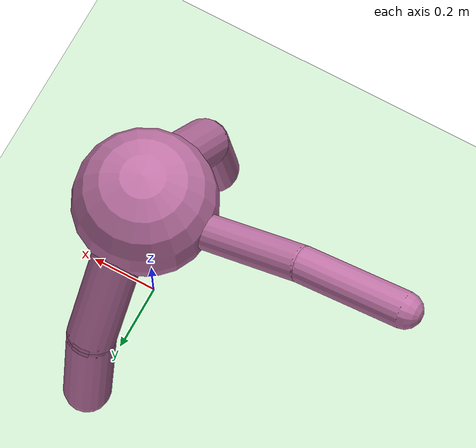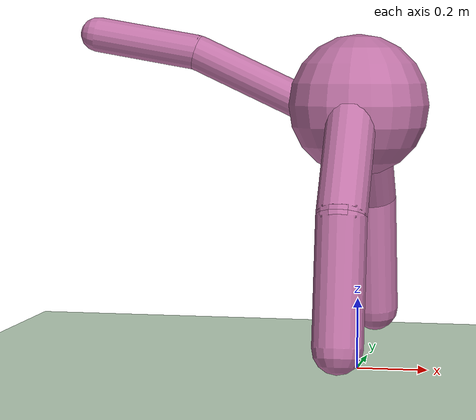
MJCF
<mujoco model="biped_tail">
  <compiler angle="radian"/>

  <option timestep="0.01" integrator="RK4"/>

  <default>
    <joint limited="true" armature="1" damping="1"/>
    <geom conaffinity="0" friction="1 0.5 0.5" margin="0.01" density="5" rgba="0.75 0.45 0.65 1"/>
  </default>

  <asset>
    <texture type="skybox" colorspace="auto" name="sky" builtin="gradient" rgb1="1 1 1" rgb2="0 0 0" width="100" height="600"/>
    <texture type="2d" colorspace="auto" name="texplane" builtin="checker" rgb1="0 0 0" rgb2="0.8 0.8 0.8" width="100" height="100"/>
    <material name="MatPlane" texture="texplane" texrepeat="60 60" specular="1" shininess="1" reflectance="0.5"/>
  </asset>

  <worldbody>
    <geom name="floor" size="40 40 40" type="plane" conaffinity="1" material="MatPlane" rgba="0.8 0.9 0.8 1"/>
    <light pos="0 0 1.3" dir="0 0 -1" type="directional" cutoff="100" diffuse="1 1 1" specular="0.1 0.1 0.1"/>
    <body name="torso" pos="0 0 0.751386">
      <joint name="root" type="free" margin="0.01" armature="0" damping="0"/>
      <geom name="torso_geom" size="0.2"/>
      <camera name="track" pos="0 -3 0.3" quat="0.707107 0.707107 0 0" mode="trackcom"/>
      <body name="leg_l">
        <geom name="leg_l_mount_geom" size="0.07 0.06" pos="0 0.06 0" quat="0.707107 0.707107 0 0" type="capsule"/>
        <body name="leg_l_seg1" pos="0 0.12 0">
          <joint name="leg_l_seg1_joint" pos="0 0 0" axis="0 0 1" range="-0.436332 0.436332"/>
          <geom name="leg_l_seg1_geom" size="0.07 0.175" pos="0 0.100376 -0.143352" quat="0.953717 0.300706 0 0" type="capsule"/>
          <body name="leg_l_seg2" pos="0 0.200752 -0.286703">
            <joint name="leg_l_seg2_joint" pos="0 0 0" axis="-1 0 0" range="-0.872665 0.872665"/>
            <geom name="leg_l_seg2_geom" size="0.07 0.175" pos="0 0.0303884 -0.172341" quat="0.996195 0.0871557 0 0" type="capsule"/>
          </body>
        </body>
      </body>
      <body name="leg_r">
        <geom name="leg_r_mount_geom" size="0.07 0.06" pos="0 -0.06 0" quat="0.707107 -0.707107 0 0" type="capsule"/>
        <body name="leg_r_seg1" pos="0 -0.12 0">
          <joint name="leg_r_seg1_joint" pos="0 0 0" axis="0 0 1" range="-0.436332 0.436332"/>
          <geom name="leg_r_seg1_geom" size="0.07 0.175" pos="0 -0.100376 -0.143352" quat="0.953717 -0.300706 0 0" type="capsule"/>
          <body name="leg_r_seg2" pos="0 -0.200752 -0.286703">
            <joint name="leg_r_seg2_joint" pos="0 0 0" axis="1 0 0" range="-0.872665 0.872665"/>
            <geom name="leg_r_seg2_geom" size="0.07 0.175" pos="0 -0.0303884 -0.172341" quat="0.996195 -0.0871557 0 0" type="capsule"/>
          </body>
        </body>
      </body>
      <body name="tail">
        <geom name="tail_mount_geom" size="0.05 0.075" pos="-0.075 0 0" quat="0.707107 0 0.707107 0" type="capsule"/>
        <body name="tail_seg1" pos="-0.15 0 0">
          <joint name="tail_seg1_joint" pos="0 0 0" axis="0 0 1" range="-0.698132 0.698132"/>
          <geom name="tail_seg1_geom" size="0.05 0.175" pos="-0.158604 0 0.0739582" quat="0.5373 0 0.843391 0" type="capsule"/>
          <body name="tail_seg2" pos="-0.317208 0 0.147916">
            <joint name="tail_seg2_joint" pos="0 0 0" axis="0 -1 0" range="-0.698132 0.698132"/>
            <geom name="tail_seg2_geom" size="0.05 0.15" pos="-0.147721 0 0.0260472" quat="0.642788 0 0.766044 0" type="capsule"/>
          </body>
        </body>
      </body>
    </body>
  </worldbody>

  <actuator>
    <general name="leg_l_seg1_motor" joint="leg_l_seg1_joint" ctrllimited="true" ctrlrange="-1 1" gear="180 0 0 0 0 0"/>
    <general name="leg_l_seg2_motor" joint="leg_l_seg2_joint" ctrllimited="true" ctrlrange="-1 1" gear="180 0 0 0 0 0"/>
    <general name="leg_r_seg1_motor" joint="leg_r_seg1_joint" ctrllimited="true" ctrlrange="-1 1" gear="180 0 0 0 0 0"/>
    <general name="leg_r_seg2_motor" joint="leg_r_seg2_joint" ctrllimited="true" ctrlrange="-1 1" gear="180 0 0 0 0 0"/>
    <general name="tail_seg1_motor" joint="tail_seg1_joint" ctrllimited="true" ctrlrange="-1 1" gear="80 0 0 0 0 0"/>
    <general name="tail_seg2_motor" joint="tail_seg2_joint" ctrllimited="true" ctrlrange="-1 1" gear="80 0 0 0 0 0"/>
  </actuator>
</mujoco>
